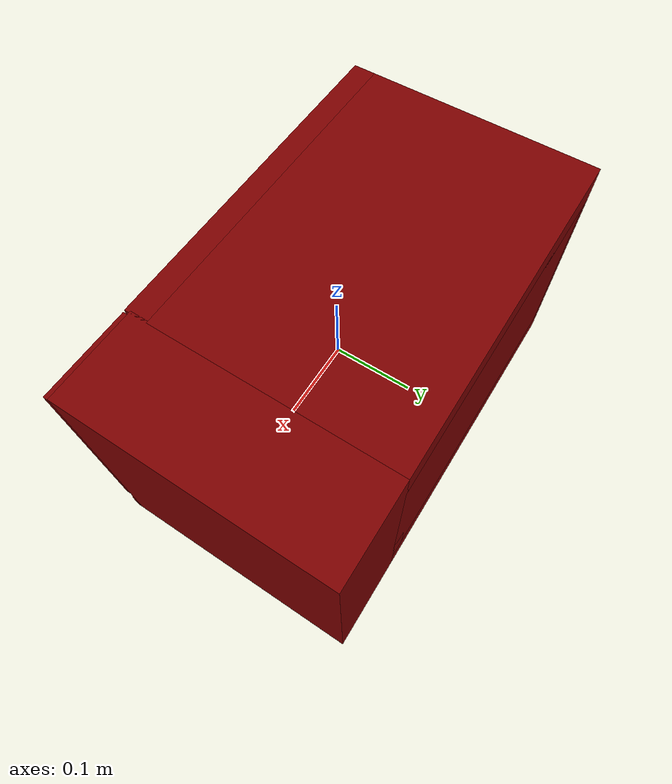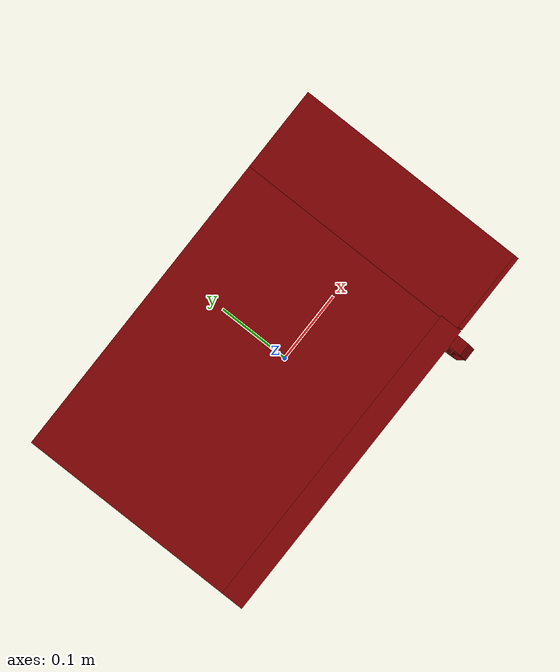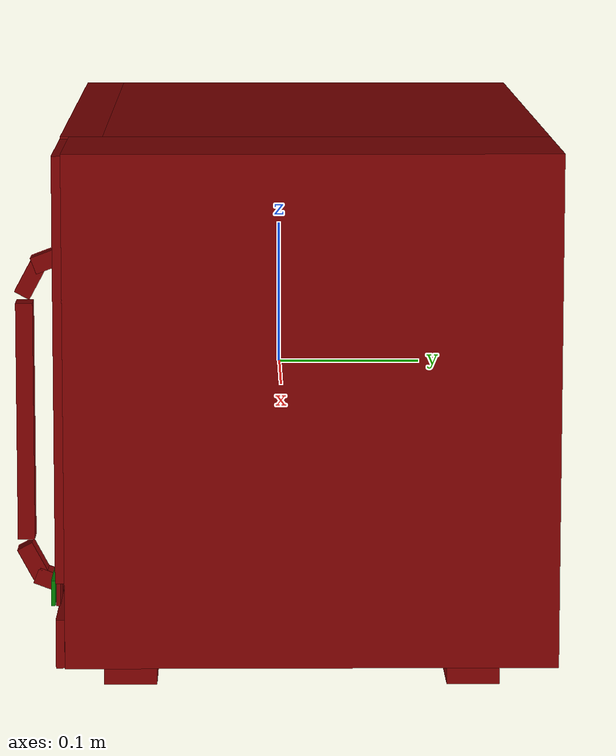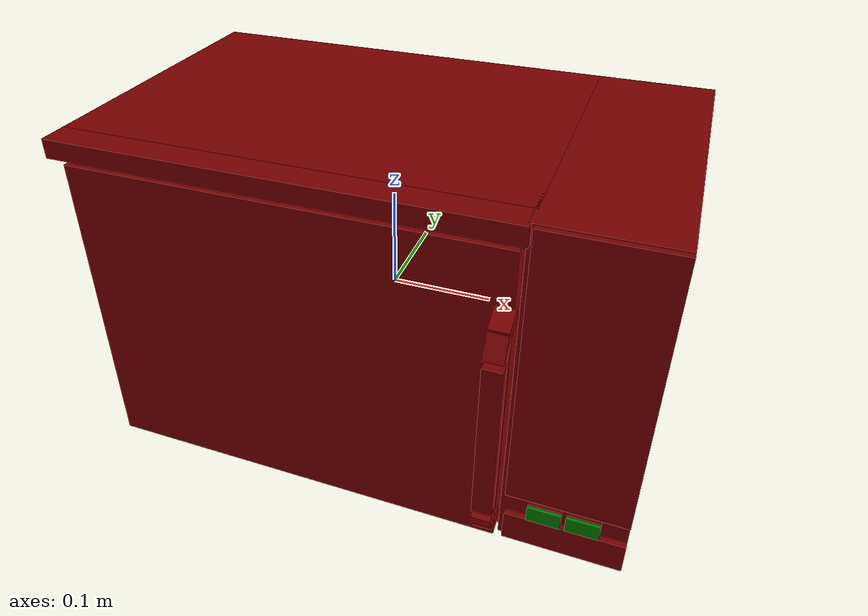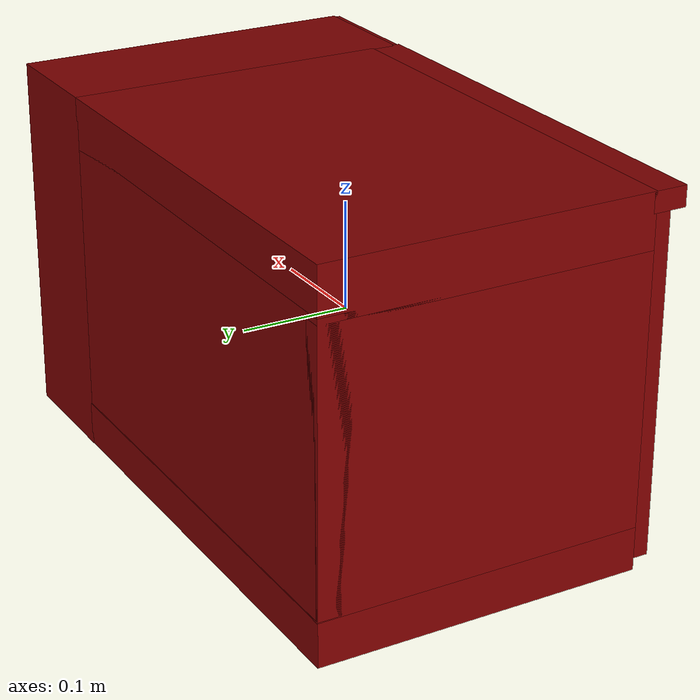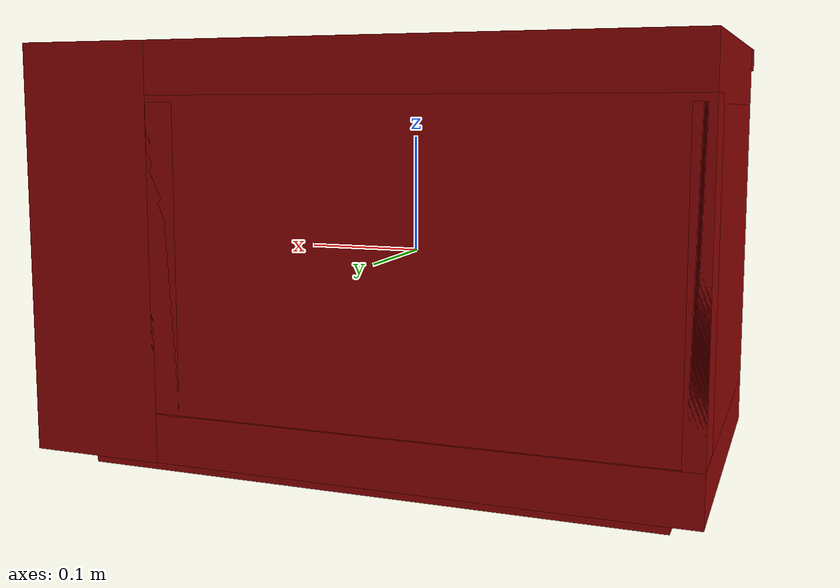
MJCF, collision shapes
<mujoco model="model">
  <compiler angle="radian"/>
  <asset>
    <mesh file="visuals/door.obj" name="door_vis"/>
    <mesh file="visuals/door_Clear.obj" name="door_Clear_vis"/>
    <mesh file="visuals/Body001.obj" name="Body001_vis"/>
    <mesh file="visuals/Button001.obj" name="Button001_vis"/>
    <mesh file="visuals/Button002.obj" name="Button002_vis"/>
    <mesh file="visuals/Disc001.obj" name="Disc001_vis"/>
    <texture file="visuals/T_BC001.png" name="Body001_material" type="2d"/>
    <material name="Body001_material" rgba="1 1 1 1.0" texture="Body001_material" shininess="0.4472135901451111" specular="0.3103448502657381"/>
    <texture file="visuals/T_BC001.png" name="door_material" type="2d"/>
    <material name="door_material" rgba="1 1 1 1.0" texture="door_material" shininess="0.4472135901451111" specular="0.3103448502657381"/>
    <texture file="visuals/T_BC001.png" name="door_Clear_material" type="2d"/>
    <material name="door_Clear_material" rgba="1 1 1 0.75" texture="door_Clear_material" shininess="0.4472135901451111" specular="0.3103448502657381"/>
    <texture file="visuals/T_BC001.png" name="Button001_material" type="2d"/>
    <material name="Button001_material" rgba="1 1 1 1.0" texture="Button001_material" shininess="0.4472135901451111" specular="0.3103448502657381"/>
    <texture file="visuals/T_BC001.png" name="Button002_material" type="2d"/>
    <material name="Button002_material" rgba="1 1 1 1.0" texture="Button002_material" shininess="0.4472135901451111" specular="0.3103448502657381"/>
    <texture file="visuals/T_BC001.png" name="Disc001_material" type="2d"/>
    <material name="Disc001_material" rgba="1 1 1 1.0" texture="Disc001_material" shininess="0.4472135901451111" specular="0.3103448502657381"/>
  </asset>
  <default>
    <default class="visual">
      <geom conaffinity="0" contype="0" group="1" type="mesh"/>
    </default>
    <default class="collision">
      <geom group="0" rgba="0.5 0 0 0.5"/>
    </default>
    <default class="spawn">
      <geom group="0" rgba="1 1 1 0.5" contype="0" conaffinity="0"/>
      <site group="0" rgba="1 1 1 0.5"/>
    </default>
    <default class="region">
      <geom group="1" conaffinity="0" contype="0" rgba="0 1 0 0"/>
    </default>
  </default>
  <worldbody>
    <body>
      <body name="object">
        <geom class="collision" type="box" pos="-0.05763543024659157 0.011082741431891918 -0.10156214237213135" size="0.11278744786977768 0.11278744786977768 0.001541092642582953" quat="1.0 0.0 0.0 0.0" name="tray" rgba="0 1 0 0.5"/>
        <geom class="collision" type="box" pos="0.19782164692878723 -0.15044355392456055 -0.11383447796106339" size="0.015336801297962666 0.0012805156875401735 0.008436398580670357" quat="1.0 0.0 0.0 0.0" name="start_button" rgba="0.0 0.5 0 0.5"/>
        <geom class="collision" type="box" pos="0.23283889889717102 -0.15044355392456055 -0.11372950673103333" size="0.015423550270497799 0.0012805156875401735 0.008436394855380058" quat="1.0 0.0 0.0 0.0" name="stop_button" rgba="0.0 0.5 0 0.5"/>
        <geom mesh="Body001_vis" type="mesh" solimp="0.998 0.998 0.001" solref="0.001 1" density="100" friction="0.95 0.3 0.1" class="visual" material="Body001_material"/>
        <geom class="collision" type="box" pos="-0.05650288984179497 0.02996852621436119 -0.13810420036315918" size="0.21579544246196747 0.1495121568441391 0.020053865388035774" quat="1.0 0.0 0.0 0.0"/>
        <geom class="collision" type="box" pos="-0.2641928195953369 0.02996852807700634 0.005621983669698238" size="0.008105500601232052 0.1495121568441391 0.12430523335933685" quat="1.0 0.0 0.0 0.0"/>
        <geom class="collision" type="box" pos="-0.056502923369407654 0.1575947254896164 0.009011215530335903" size="0.21579542756080627 0.021885957568883896 0.12627333402633667" quat="1.0 0.0 0.0 0.0"/>
        <geom class="collision" type="box" pos="-0.05650293827056885 -0.13249026238918304 0.16813541948795319" size="0.21579541265964508 0.015356582589447498 0.00926161464303732" quat="1.0 0.0 0.0 0.0"/>
        <geom class="collision" type="box" pos="0.21454721689224243 0.018696513026952744 0.009414720349013805" size="0.0577511228621006 0.16078417003154755 0.1679822951555252" quat="1.0 0.0 0.0 0.0"/>
        <geom class="collision" type="box" pos="-0.056502968072891235 0.029968557879328728 0.15277664363384247" size="0.2157953828573227 0.1495121270418167 0.024620411917567253" quat="1.0 0.0 0.0 0.0"/>
        <geom class="collision" type="box" pos="0.14710645377635956 0.029968561604619026 0.005621983669698238" size="0.011839086189866066 0.14951211214065552 0.12430515885353088" quat="1.0 0.0 0.0 0.0"/>
        <geom class="collision" type="box" pos="-0.0024563376791775227 -0.10042570531368256 -0.1655990183353424" size="0.24282032251358032 0.017416086047887802 0.011798009276390076" quat="1.0 0.0 0.0 0.0"/>
        <geom class="collision" type="box" pos="-0.0024563376791775227 0.12577728927135468 -0.1655990183353424" size="0.24282032251358032 0.017416086047887802 0.011798009276390076" quat="1.0 0.0 0.0 0.0"/>
        <geom class="collision" type="box" pos="0.2167968451976776 -0.14497677981853485 0.0372631810605526" size="0.055501509457826614 0.00291434652172029 0.13899151980876923" quat="1.0 0.0 0.0 0.0"/>
        <geom class="collision" type="box" pos="0.2169858068227768 -0.14497677981853485 -0.14205771684646606" size="0.05531252548098564 0.002820743713527918 0.015988659113645554" quat="1.0 0.0 0.0 0.0"/>
        <body name="door">
          <joint axis="0.0 0.0 1.0" pos="-0.2581709623336792 -0.13461221754550934 -0.0004099905490875244" limited="true" name="microjoint" range="-1.5707963267948966 0.0" type="hinge" damping="1" frictionloss="1" armature=".01" stiffness="0.05"/>
          <geom mesh="door_vis" type="mesh" solimp="0.998 0.998 0.001" solref="0.001 1" density="100" friction="0.95 0.3 0.1" class="visual" material="door_material"/>
          <geom class="collision" type="box" pos="-0.050991788506507874 -0.13533228635787964 -0.002524376381188631" size="0.2045060247182846 0.011613438837230206 0.157330721616745" quat="1.0 0.0 0.0 0.0"/>
          <geom class="collision" type="box" pos="0.14707040786743164 -0.17343617975711823 -0.01623465120792389" size="0.008900480344891548 0.005757467821240425 0.08104900270700455" quat="1.0 0.0 0.0 0.0" name="door_handle"/>
          <geom class="collision" type="box" pos="0.14707040786743164 -0.15629811584949493 0.09394919872283936" size="0.008900480344891548 0.005757467821240425 0.011349364183843136" quat="0.823179304599762 -0.5677815079689026 -0.0 0.0"/>
          <geom class="collision" type="box" pos="0.14707040786743164 -0.1691921353340149 0.08023849129676819" size="0.008900480344891548 0.005757467821240425 0.01168433390557766" quat="0.969722330570221 -0.24421025812625885 -0.0 0.0"/>
          <geom class="collision" type="box" pos="0.14707040786743164 -0.1691921204328537 -0.11270785331726074" size="0.008900480344891548 0.005757467821240425 0.01168433390557766" quat="0.969722330570221 0.24421025812625885 0.0 0.0"/>
          <geom class="collision" type="box" pos="0.14707040786743164 -0.15629811584949493 -0.12641854584217072" size="0.008900480344891548 0.005757467821240425 0.01134936697781086" quat="0.823179304599762 0.5677815079689026 0.0 0.0"/>
          <body name="door_Clear">
            <geom mesh="door_Clear_vis" type="mesh" solimp="0.998 0.998 0.001" solref="0.001 1" density="100" friction="0.95 0.3 0.1" class="visual" material="door_Clear_material"/>
            <geom class="collision" type="box" pos="-0.056987326592206955 -0.1371203511953354 -0.00033478564000688493" size="0.15617835521697998 0.006391293369233608 0.09085484594106674" quat="1.0 0.0 0.0 0.0"/>
          </body>
        </body>
        <body name="Button001">
          <joint axis="0.0 1.0 0.0" pos="0.19762928783893585 -0.1487465351819992 -0.11371246725320816" limited="true" name="Button001_joint" range="0.0 0.0034999999999999996" type="slide" damping="1" frictionloss="1" armature=".01" stiffness="0.05"/>
          <geom mesh="Button001_vis" type="mesh" solimp="0.998 0.998 0.001" solref="0.001 1" density="100" friction="0.95 0.3 0.1" class="visual" material="Button001_material"/>
          <geom class="collision" type="box" pos="0.19782164692878723 -0.14721527695655823 -0.11383447796106339" size="0.015336769632995129 0.0012805156875401735 0.008436398580670357" quat="1.0 0.0 0.0 0.0"/>
        </body>
        <body name="Button002">
          <joint axis="0.0 1.0 0.0" pos="0.23318633437156677 -0.1487465351819992 -0.11381849646568298" limited="true" name="Button002_joint" range="0.0 0.0034999999999999996" type="slide" damping="1" frictionloss="1" armature=".01" stiffness="0.05"/>
          <geom mesh="Button002_vis" type="mesh" solimp="0.998 0.998 0.001" solref="0.001 1" density="100" friction="0.95 0.3 0.1" class="visual" material="Button002_material"/>
          <geom class="collision" type="box" pos="0.23283889889717102 -0.14721527695655823 -0.11372950673103333" size="0.015423566102981567 0.0012805156875401735 0.008436394855380058" quat="1.0 0.0 0.0 0.0"/>
        </body>
        <body name="Disc001">
          <joint axis="0.0 0.0 1.0" pos="-0.057635433971881866 0.011082734912633896 -0.10840092599391937" limited="false" name="Disc001_joint" range="0 360" type="hinge" damping="1" frictionloss="1" armature=".01" stiffness="0.05"/>
          <geom mesh="Disc001_vis" type="mesh" solimp="0.998 0.998 0.001" solref="0.001 1" density="100" friction="0.95 0.3 0.1" class="visual" material="Disc001_material"/>
          <geom class="collision" type="cylinder" pos="-0.05763543024659157 0.011082741431891918 -0.10634709149599075" size="0.11278744786977768 0.0018401468405500054" quat="1.0 0.0 0.0 0.0"/>
        </body>
        <geom class="region" name="reg_main" type="box" pos="0.0 0.015749968588352203 7.450580596923828e-09" size="0.27229833602905273 0.1637307107448578 0.17739704251289368"/>
        <geom class="region" name="reg_int" type="box" pos="-0.0601707324385643 0.010693497955799103 -0.0014526769518852234" size="0.19145501405000687 0.12171315401792526 0.12418320029973984"/>
      </body>
    </body>
  </worldbody>
  <actuator>
    <motor name="microjoint_actuator" joint="microjoint" gear="10"/>
    <motor name="Button001_joint_actuator" joint="Button001_joint" gear="0.1"/>
    <motor name="Button002_joint_actuator" joint="Button002_joint" gear="0.1"/>
    <motor name="Disc001_joint_actuator" joint="Disc001_joint" gear="10"/>
  </actuator>
</mujoco>
